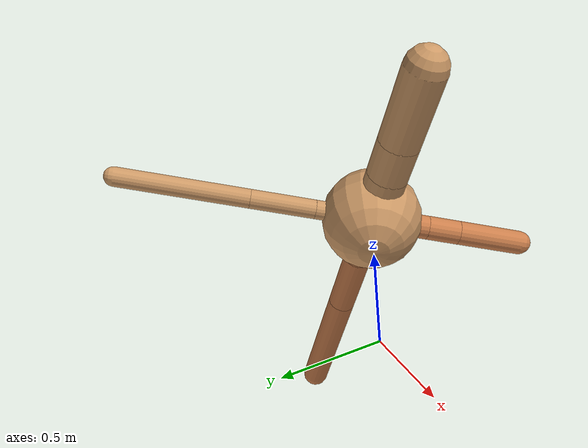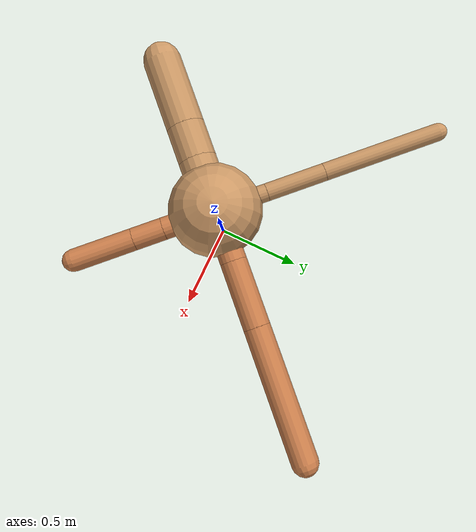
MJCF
<?xml version="1.0" ?>
<mujoco model="ant">

	<compiler angle="degree" coordinate="local" inertiafromgeom="true"/>

	<option integrator="RK4" timestep="0.01"/>

	<custom>

		<numeric data="0.0 0.0 0.55 1.0 0.0 0.0 0.0 0.0 1.0 0.0 -1.0 0.0 -1.0 0.0 1.0" name="init_qpos"/>

	</custom>

	<default>

		<joint armature="1" damping="1" limited="true"/>

		<geom conaffinity="0" condim="3" density="5.0" friction="1.5 0.1 0.1" margin="0.01" rgba="0.8 0.6 0.4 1"/>

	</default>

	<worldbody>

		<body name="torso" pos="0 0 0.75">

			<geom name="torso_geom" pos="0 0 0" size="0.24728264227928176" type="sphere"/>

			<!--joint armature="0" damping="0" limited="false" margin="0.01" name="root" pos="0 0 0" type="free"/-->

			<body name="front_left_leg" pos="0 0 0">

				<geom fromto="0 0 0 0.2 0.2 0" name="aux_1_geom" size="0.0710453890872713" type="capsule" rgba=".8 .5 .3 1"/>

				<body name="aux_1" pos="0.2 0.2 0">

					<joint axis="0 0 1" name="hip_1" pos="0.0 0.0 0.0" range="-40 40" type="hinge"/>

					<geom fromto="0 0 0 0.2508978596372408 0.2508978596372408 0" name="left_leg_geom" size="0.0710453890872713" type="capsule" rgba=".8 .5 .3 1"/>

					<body pos="0.2508978596372408 0.2508978596372408 0" name="front_left_foot">

						<joint axis="-1 1 0" name="ankle_1" pos="0.0 0.0 0.0" range="30 100" type="hinge"/>

						<geom fromto="0 0 0 0.5017957192744816 0.5017957192744816 0" name="left_ankle_geom" size="0.0710453890872713" type="capsule" rgba=".8 .5 .3 1"/>

					</body>

				</body>

			</body>

			<body name="front_right_leg" pos="0 0 0">

				<geom fromto="0 0 0 -0.2 0.2 0" name="aux_2_geom" size="0.0471461925459645" type="capsule"/>

				<body name="aux_2" pos="-0.2 0.2 0">

					<joint axis="0 0 1" name="hip_2" pos="0.0 0.0 0.0" range="-40 40" type="hinge"/>

					<geom fromto="0 0 0 -0.22534958990055515 0.22534958990055515 0" name="right_leg_geom" size="0.0471461925459645" type="capsule"/>

					<body pos="-0.22534958990055515 0.22534958990055515 0" name="front_right_foot">

						<joint axis="1 1 0" name="ankle_2" pos="0.0 0.0 0.0" range="-100 -30" type="hinge"/>

						<geom fromto="0 0 0 -0.4506991798011103 0.4506991798011103 0" name="right_ankle_geom" size="0.0471461925459645" type="capsule"/>

					</body>

				</body>

			</body>

			<body name="left_back_leg" pos="0 0 0">

				<geom fromto="0 0 0 -0.2 -0.2 0" name="aux_3_geom" size="0.10154889832463061" type="capsule"/>

				<body name="aux_3" pos="-0.2 -0.2 0">

					<joint axis="0 0 1" name="hip_3" pos="0.0 0.0 0.0" range="-40 40" type="hinge"/>

					<geom fromto="0 0 0 -0.13473419024889322 -0.13473419024889322 0" name="back_leg_geom" size="0.10154889832463061" type="capsule"/>

					<body pos="-0.13473419024889322 -0.13473419024889322 0" name="left_back_foot">

						<joint axis="-1 1 0" name="ankle_3" pos="0.0 0.0 0.0" range="-100 -30" type="hinge"/>

						<geom fromto="0 0 0 -0.26946838049778643 -0.26946838049778643 0" name="third_ankle_geom" size="0.10154889832463061" type="capsule"/>

					</body>

				</body>

			</body>

			<body name="right_back_leg" pos="0 0 0">

				<geom fromto="0 0 0 0.2 -0.2 0" name="aux_4_geom" size="0.05919480757927479" type="capsule" rgba=".8 .5 .3 1"/>

				<body name="aux_4" pos="0.2 -0.2 0">

					<joint axis="0 0 1" name="hip_4" pos="0.0 0.0 0.0" range="-40 40" type="hinge"/>

					<geom fromto="0 0 0 0.1149489222923485 -0.1149489222923485 0" name="rightback_leg_geom" size="0.05919480757927479" type="capsule" rgba=".8 .5 .3 1"/>

					<body pos="0.1149489222923485 -0.1149489222923485 0" name="right_back_foot">

						<joint axis="1 1 0" name="ankle_4" pos="0.0 0.0 0.0" range="30 100" type="hinge"/>

						<geom fromto="0 0 0 0.229897844584697 -0.229897844584697 0" name="fourth_ankle_geom" size="0.05919480757927479" type="capsule" rgba=".8 .5 .3 1"/>

					</body>

				</body>

			</body>

		</body>

	</worldbody>

	<actuator>

		<motor ctrllimited="true" ctrlrange="-1.0 1.0" joint="hip_4" gear="150"/>

		<motor ctrllimited="true" ctrlrange="-1.0 1.0" joint="ankle_4" gear="150"/>

		<motor ctrllimited="true" ctrlrange="-1.0 1.0" joint="hip_1" gear="150"/>

		<motor ctrllimited="true" ctrlrange="-1.0 1.0" joint="ankle_1" gear="150"/>

		<motor ctrllimited="true" ctrlrange="-1.0 1.0" joint="hip_2" gear="150"/>

		<motor ctrllimited="true" ctrlrange="-1.0 1.0" joint="ankle_2" gear="150"/>

		<motor ctrllimited="true" ctrlrange="-1.0 1.0" joint="hip_3" gear="150"/>

		<motor ctrllimited="true" ctrlrange="-1.0 1.0" joint="ankle_3" gear="150"/>

	</actuator>

</mujoco>
